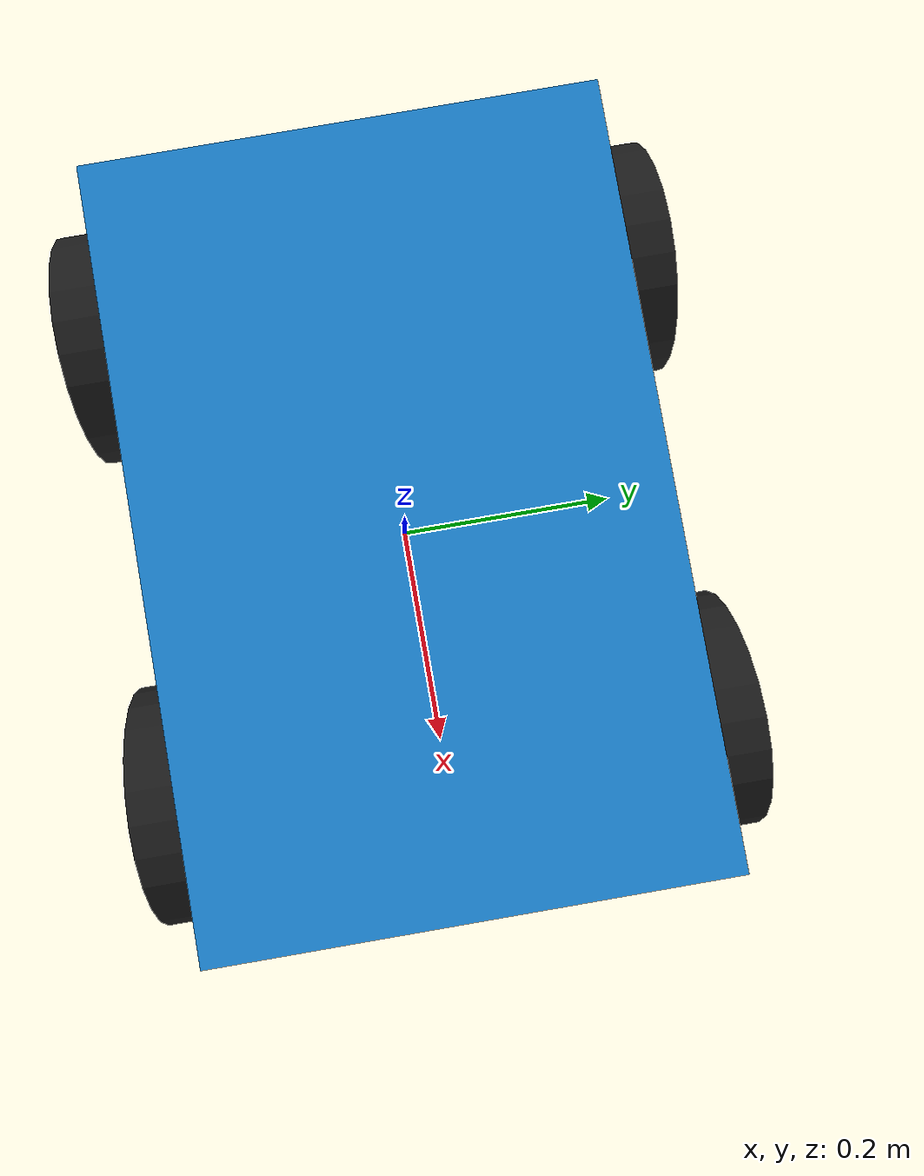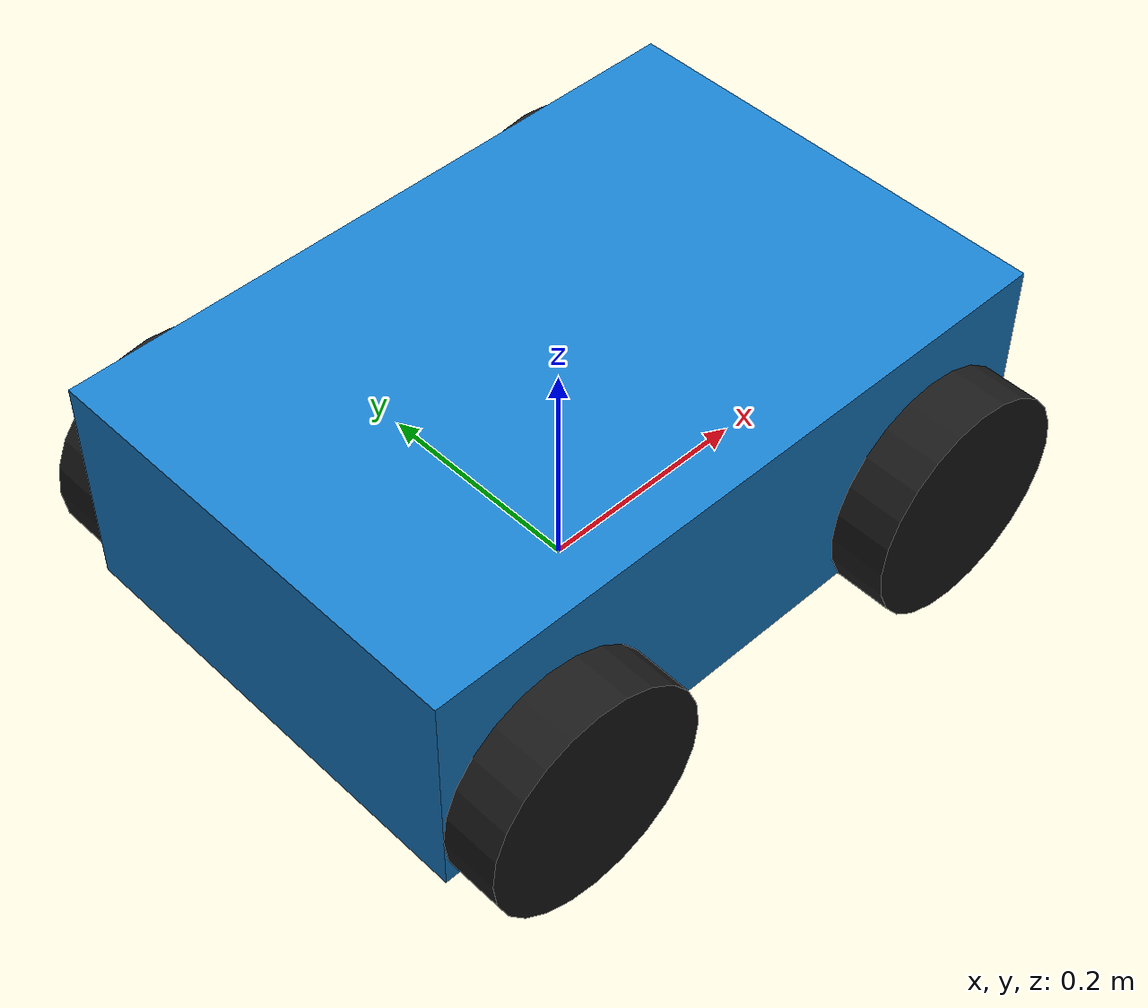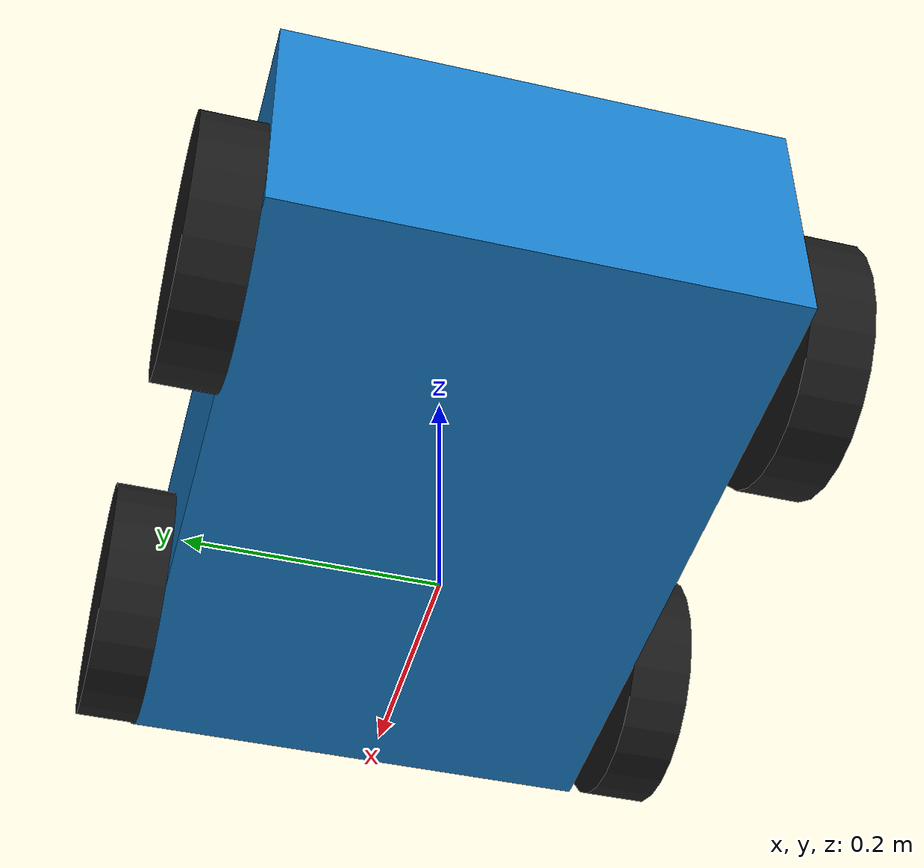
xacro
<?xml version="1.0"?>
<robot name="custom_4wheel_robot" xmlns:xacro="http://www.ros.org/wiki/xacro">

  <xacro:include filename="properties.xacro" />

  <link name="base_footprint"/>

  <joint name="base_footprint_joint" type="fixed">
    <parent link="base_footprint"/>
    <child link="base_link"/>
    <origin xyz="0 0 0.15" rpy="0 0 0"/>
  </joint>

  <link name="base_link">
    <visual>
      <geometry>
        <box size="${base_length} ${base_width} ${base_height}"/>
      </geometry>
      <material name="chassis_color">
        <color rgba="0.1 0.5 0.8 1.0"/> </material>
    </visual>
    <collision>
      <geometry>
        <box size="${base_length} ${base_width} ${base_height}"/>
      </geometry>
    </collision>
    <inertial>
      <mass value="${base_mass}"/>
      <origin xyz="0 0 0" rpy="0 0 0"/>
      <inertia ixx="${(1/12) * base_mass * (base_width*base_width + base_height*base_height)}" ixy="0.0" ixz="0.0"
               iyy="${(1/12) * base_mass * (base_length*base_length + base_height*base_height)}" iyz="0.0"
               izz="${(1/12) * base_mass * (base_length*base_length + base_width*base_width)}"/>
    </inertial>
  </link>

  <xacro:macro name="wheel" params="prefix x_reflect y_reflect">

    <joint name="${prefix}_wheel_joint" type="continuous">
      <parent link="base_link"/>
      <child link="${prefix}_wheel_link"/>
      <origin xyz="${x_reflect * wheel_x_offset} ${y_reflect * wheel_y_offset} ${wheel_z_offset}" rpy="0 0 0"/>
      <axis xyz="0 1 0"/> </joint>

    <link name="${prefix}_wheel_link">
      <visual>
        <origin xyz="0 0 0" rpy="${pi/2} 0 0"/>
        <geometry>
          <cylinder radius="${wheel_radius}" length="${wheel_width}"/>
        </geometry>
        <material name="wheel_color">
          <color rgba="0.1 0.1 0.1 1.0"/> </material>
      </visual>
      <collision>
        <origin xyz="0 0 0" rpy="${pi/2} 0 0"/>
        <geometry>
          <cylinder radius="${wheel_radius}" length="${wheel_width}"/>
        </geometry>
      </collision>
      <inertial>
        <mass value="${wheel_mass}"/>
        <origin xyz="0 0 0" rpy="${pi/2} 0 0"/>
        <inertia ixx="${(1/12) * wheel_mass * (3*wheel_radius*wheel_radius + wheel_width*wheel_width)}" ixy="0.0" ixz="0.0"
                 iyy="${(1/12) * wheel_mass * (3*wheel_radius*wheel_radius + wheel_width*wheel_width)}" iyz="0.0"
                 izz="${(1/2) * wheel_mass * (wheel_radius*wheel_radius)}"/>
      </inertial>
    </link>
  </xacro:macro>

  <xacro:wheel prefix="front_left"  x_reflect="1"  y_reflect="1" />
  <xacro:wheel prefix="front_right" x_reflect="1"  y_reflect="-1" />
  <xacro:wheel prefix="rear_left"   x_reflect="-1" y_reflect="1" />
  <xacro:wheel prefix="rear_right"  x_reflect="-1" y_reflect="-1" />

</robot>

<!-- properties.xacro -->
<robot xmlns:xacro="http://www.ros.org/wiki/xacro">

  <xacro:property name="base_length" value="0.6"/>
  <xacro:property name="base_width" value="0.4"/>
  <xacro:property name="base_height" value="0.2"/>
  <xacro:property name="base_mass" value="5.0"/>

  <xacro:property name="wheel_radius" value="0.1"/>
  <xacro:property name="wheel_width" value="0.05"/>
  <xacro:property name="wheel_mass" value="0.5"/>

  <xacro:property name="wheel_x_offset" value="0.2"/>
  <xacro:property name="wheel_y_offset" value="0.225"/>
  <xacro:property name="wheel_z_offset" value="-0.05"/>

</robot>
